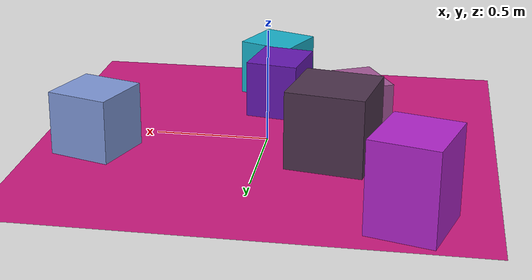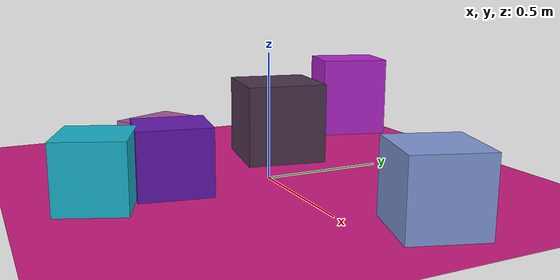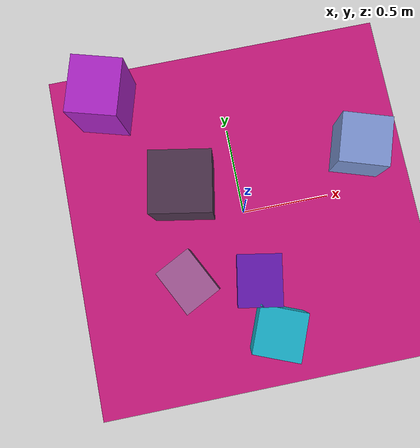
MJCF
<mujoco>
   <asset>
<texture type="skybox" builtin="gradient" rgb1="0.4 1.0 0.1" rgb2="0.7 0.7 0.5" width="256" height="256"/>
<texture name="checker_0" builtin="checker" rgb1="0.4 0.6 0.6" rgb2="0.9 0.1 0.6" width="200" height="200"/>
<texture name="flat_1" builtin="flat" rgb1="0.4 0.1 0.7" rgb2="0.4 0.1 0.7"  width="200" height="200"/>
<texture name="checker_2" builtin="checker" rgb1="0.6 0.1 0.8" rgb2="0.8 0.2 0.8" width="200" height="200"/>
<texture name="checker_3" builtin="checker" rgb1="0.2 0.3 0.8" rgb2="0.8 0.9 0.9" width="200" height="200"/>
<texture name="flat_4" builtin="flat" rgb1="0.1 0.7 0.8" rgb2="0.1 0.7 0.8"  width="200" height="200"/>
<texture name="checker_5" builtin="checker" rgb1="0.4 0.1 0.1" rgb2="0.2 0.3 0.5" width="200" height="200"/><material name="checker_0_mat" reflectance="0" texrepeat="2 2" texture="checker_0" texuniform="false" />
<material name="flat_1_mat" reflectance="0" texture="flat_1" texuniform="true"/>
<material name="checker_2_mat" reflectance="0" texrepeat="8 8" texture="checker_2" texuniform="false" />
<material name="checker_3_mat" reflectance="0" texrepeat="3 3" texture="checker_3" texuniform="false" />
<material name="flat_4_mat" reflectance="0" texture="flat_4" texuniform="true"/>
<material name="checker_5_mat" reflectance="0" texrepeat="7 7" texture="checker_5" texuniform="false" />
   </asset>

   <worldbody>
      <light diffuse=".9 .9 .9" pos="0 0 3" dir="0 0 -1"/>
     <geom type="plane" size="1 1 0.1" rgba="0.8 0.1 0.5 1"/>
<geom type="box" pos="-0.38 -0.33 0.1" size="0.11 0.14 0.1" material="checker_0_mat" euler="0 0 27" />
<geom type="box" pos="-0.0 -0.4 0.13" size="0.14 0.12 0.13" material="flat_1_mat" euler="0 0 80" />
<geom type="box" pos="-0.66 0.78 0.19" size="0.16 0.14 0.19" material="checker_2_mat" euler="0 0 74" />
<geom type="box" pos="0.72 0.23 0.14" size="0.14 0.14 0.14" material="checker_3_mat" euler="0 0 72" />
<geom type="box" pos="0.05 -0.69 0.13" size="0.13 0.13 0.13" material="flat_4_mat" euler="0 0 68" />
<geom type="box" pos="-0.31 0.19 0.17" size="0.17 0.17 0.17" material="checker_5_mat" euler="0 0 80" /><camera euler="60 0 180" fovy="60" name="camera2" pos="0.2 -1.5 1"></camera>   </worldbody>
</mujoco>
